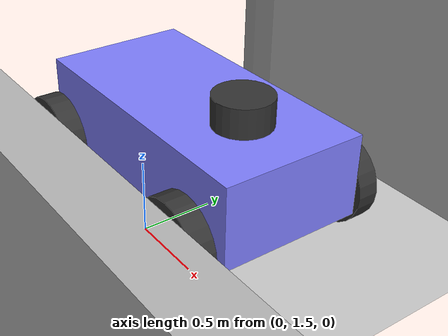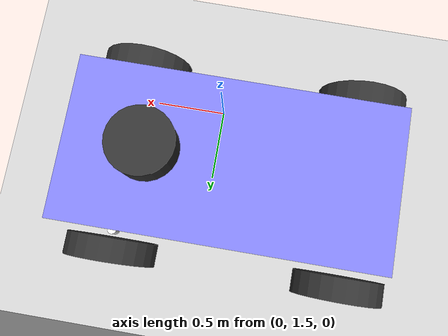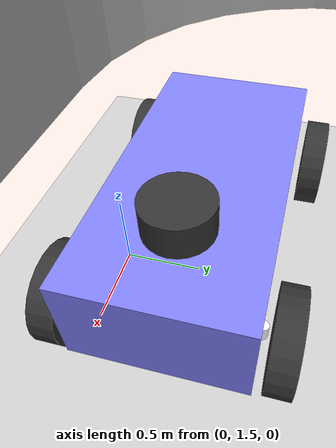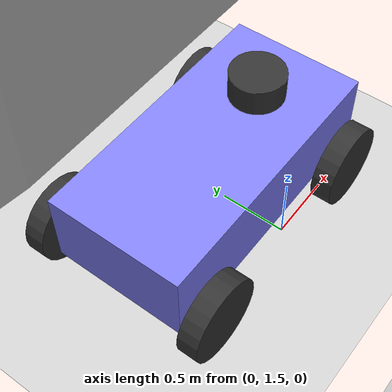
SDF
<?xml version="1.0"?>
<sdf version="1.6">
  <world name="race">

    <physics name="1ms" type="ignored">
      <max_step_size>0.001</max_step_size>
      <real_time_factor>1.0</real_time_factor>
    </physics>
    <plugin
      filename="ignition-gazebo-physics-system"
      name="ignition::gazebo::systems::Physics">
    </plugin>
    <plugin
      filename="ignition-gazebo-user-commands-system"
      name="ignition::gazebo::systems::UserCommands">
    </plugin>
    <plugin
      filename="ignition-gazebo-scene-broadcaster-system"
      name="ignition::gazebo::systems::SceneBroadcaster">
    </plugin>
    <plugin
      filename="ignition-gazebo-sensors-system"
      name="ignition::gazebo::systems::Sensors">
      <render_engine>ogre2</render_engine>
    </plugin>
    <plugin
      filename="ignition-gazebo-contact-system"
      name="ignition::gazebo::systems::Contact">
    </plugin>

    <light type="directional" name="sun">
      <cast_shadows>true</cast_shadows>
      <pose>0 0 10 0 0 0</pose>
      <diffuse>1 1 1 1</diffuse>
      <specular>0.5 0.5 0.5 1</specular>
      <attenuation>
        <range>1000</range>
        <constant>0.9</constant>
        <linear>0.01</linear>
        <quadratic>0.001</quadratic>
      </attenuation>
      <direction>-0.5 0.1 -0.9</direction>
    </light>

    <model name="ground_plane">
      <static>true</static>
      <link name="link">
        <collision name="collision">
          <geometry>
            <plane>
              <normal>0 0 1</normal>
              <size>100 100</size>
            </plane>
          </geometry>
          <surface>
            <friction>
              <ode>
                <mu>50</mu>
              </ode>
            </friction>
          </surface>
        </collision>
        <visual name="visual">
          <geometry>
            <plane>
              <normal>0 0 1</normal>
              <size>100 100</size>
            </plane>
          </geometry>
          <material>
            <ambient>0.8 0.8 0.8 1</ambient>
            <diffuse>0.8 0.8 0.8 1</diffuse>
            <specular>0.8 0.8 0.8 1</specular>
          </material>
        </visual>
      </link>
    </model>

    <model name="road">
      <static>true</static>
      <pose>-5 0 0 0 -0 0</pose>
      <link name="link">
        <visual name="visual">
          <geometry>
            <mesh>
              <scale>100 100 100</scale>
              <uri>model://road.STL</uri>
            </mesh>
            <material>
              <ambient>1.0 1.0 1.0 1</ambient>
              <diffuse>1.0 1.0 1.0 1</diffuse>
              <specular>1.0 1.0 1.0 1</specular>
            </material>
          </geometry>
        </visual>
        <collision name="collision">
          <geometry>
            <mesh>
              <scale>100 100 100</scale>
              <uri>model://road.STL</uri>
            </mesh>
          </geometry>
        </collision>
        <sensor name="sensor_contact" type="contact">
          <contact>
            <collision>collision</collision>
          </contact>
        </sensor>
      </link>
    </model>

    <model name="vehicle">
      <pose>0 2 0.325 0 -0 0</pose>

      <frame name="lidar_frame" attached_to="chassis">
        <pose>0.5 0 0.284363 0 0 0</pose>
      </frame>

      <link name="chassis">
        <pose>-0.151427 -0 0.175 0 -0 0</pose>
        <inertial>
          <mass>1.14395</mass>
          <inertia>
            <ixx>0.126164</ixx>
            <ixy>0</ixy>
            <ixz>0</ixz>
            <iyy>0.416519</iyy>
            <iyz>0</iyz>
            <izz>0.481014</izz>
          </inertia>
        </inertial>
        <visual name="visual">
          <geometry>
            <box>
              <size>2.01142 1 0.568726</size>
            </box>
          </geometry>
          <material>
            <ambient>0.5 0.5 1.0 1</ambient>
            <diffuse>0.5 0.5 1.0 1</diffuse>
            <specular>0.0 0.0 1.0 1</specular>
          </material>
        </visual>
        <collision name="collision">
          <geometry>
            <box>
              <size>2.01142 1 0.568726</size>
            </box>
          </geometry>
        </collision>
      </link>

      <link name="lidar">
        <pose relative_to="lidar_frame">0 0 0.1 0 0 0</pose>
        <inertial>
          <mass>0.5</mass>
          <inertia>
            <ixx>0.006667</ixx>
            <ixy>0</ixy>
            <ixz>0</ixz>
            <iyy>0.006667</iyy>
            <iyz>0</iyz>
            <izz>0.01</izz>
          </inertia>
        </inertial>
        <visual name="visual">
          <geometry>
            <cylinder>
              <length>0.2</length>
              <radius>0.2</radius>
            </cylinder>
          </geometry>
          <material>
            <ambient>0.2 0.2 0.2 1</ambient>
            <diffuse>0.2 0.2 0.2 1</diffuse>
            <specular>0.2 0.2 0.2 1</specular>
          </material>
        </visual>
        <collision name="collision">
          <geometry>
            <cylinder>
              <radius>0.1</radius>
              <length>0.1</length>
            </cylinder>
          </geometry>
        </collision>
        <sensor name="gpu_lidar" type="gpu_lidar">
          <pose relative_to="lidar_frame">0 0 0.1 0 0 0</pose>
          <topic>/vehicle/lidar</topic>
          <update_rate>10</update_rate>
          <ray>
            <scan>
              <horizontal>
                <samples>360</samples>
                <resolution>1</resolution>
                <min_angle>-3.141593</min_angle>
                <max_angle>3.141593</max_angle>
              </horizontal>
              <vertical>
                <samples>1</samples>
                <resolution>0.01</resolution>
                <min_angle>0</min_angle>
                <max_angle>0</max_angle>
              </vertical>
            </scan>
            <range>
              <min>0.5</min>
              <max>10.0</max>
              <resolution>0.01</resolution>
            </range>
          </ray>
          <always_on>1</always_on>
          <visualize>true</visualize>
        </sensor>
      </link>

      <link name="front_left_wheel">
        <pose>0.554283 0.625029 -0.025 -1.5707 0 0</pose>
        <inertial>
          <mass>2</mass>
          <inertia>
            <ixx>0.145833</ixx>
            <ixy>0</ixy>
            <ixz>0</ixz>
            <iyy>0.145833</iyy>
            <iyz>0</iyz>
            <izz>0.125</izz>
          </inertia>
        </inertial>
        <visual name="visual">
          <geometry>
            <cylinder>
              <length>0.15</length>
              <radius>0.3</radius>
            </cylinder>
          </geometry>
          <material>
            <ambient>0.2 0.2 0.2 1</ambient>
            <diffuse>0.2 0.2 0.2 1</diffuse>
            <specular>0.2 0.2 0.2 1</specular>
          </material>
        </visual>
        <collision name="collision">
          <geometry>
            <cylinder>
              <length>0.15</length>
              <radius>0.3</radius>
            </cylinder>
          </geometry>
          <surface>
            <friction>
              <ode>
                <mu>0.5</mu>
                <mu2>1.0</mu2>
                <fdir1>0 0 1</fdir1>
              </ode>
            </friction>
          </surface>
        </collision>
      </link>

      <link name="rear_left_wheel">
        <pose>-0.957138 0.625029 -0.025 -1.5707 0 0</pose>
        <inertial>
          <mass>2</mass>
          <inertia>
            <ixx>0.145833</ixx>
            <ixy>0</ixy>
            <ixz>0</ixz>
            <iyy>0.145833</iyy>
            <iyz>0</iyz>
            <izz>0.125</izz>
          </inertia>
        </inertial>
        <visual name="visual">
          <geometry>
            <cylinder>
              <length>0.15</length>
              <radius>0.3</radius>
            </cylinder>
          </geometry>
          <material>
            <ambient>0.2 0.2 0.2 1</ambient>
            <diffuse>0.2 0.2 0.2 1</diffuse>
            <specular>0.2 0.2 0.2 1</specular>
          </material>
        </visual>
        <collision name="collision">
          <geometry>
            <cylinder>
              <length>0.15</length>
              <radius>0.3</radius>
            </cylinder>
          </geometry>
          <surface>
            <friction>
              <ode>
                <mu>0.5</mu>
                <mu2>1.0</mu2>
                <fdir1>0 0 1</fdir1>
              </ode>
            </friction>
          </surface>
        </collision>
      </link>

      <link name="front_right_wheel">
        <pose>0.554282 -0.625029 -0.025 -1.5707 0 0</pose>
        <inertial>
          <mass>2</mass>
          <inertia>
            <ixx>0.145833</ixx>
            <ixy>0</ixy>
            <ixz>0</ixz>
            <iyy>0.145833</iyy>
            <iyz>0</iyz>
            <izz>0.125</izz>
          </inertia>
        </inertial>
        <visual name="visual">
          <geometry>
            <cylinder>
              <length>0.15</length>
              <radius>0.3</radius>
            </cylinder>
          </geometry>
          <material>
            <ambient>0.2 0.2 0.2 1</ambient>
            <diffuse>0.2 0.2 0.2 1</diffuse>
            <specular>0.2 0.2 0.2 1</specular>
          </material>
        </visual>
        <collision name="collision">
          <geometry>
            <cylinder>
              <length>0.15</length>
              <radius>0.3</radius>
            </cylinder>
          </geometry>
          <surface>
            <friction>
              <ode>
                <mu>0.5</mu>
                <mu2>1.0</mu2>
                <fdir1>0 0 1</fdir1>
              </ode>
            </friction>
          </surface>
        </collision>
      </link>

      <link name="rear_right_wheel">
        <pose>-0.957138 -0.625029 -0.025 -1.5707 0 0</pose>
        <inertial>
          <mass>2</mass>
          <inertia>
            <ixx>0.145833</ixx>
            <ixy>0</ixy>
            <ixz>0</ixz>
            <iyy>0.145833</iyy>
            <iyz>0</iyz>
            <izz>0.125</izz>
          </inertia>
        </inertial>
        <visual name="visual">
          <geometry>
            <cylinder>
              <length>0.15</length>
              <radius>0.3</radius>
            </cylinder>
          </geometry>
          <material>
            <ambient>0.2 0.2 0.2 1</ambient>
            <diffuse>0.2 0.2 0.2 1</diffuse>
            <specular>0.2 0.2 0.2 1</specular>
          </material>
        </visual>
        <collision name="collision">
          <geometry>
            <cylinder>
              <length>0.15</length>
              <radius>0.3</radius>
            </cylinder>
          </geometry>
          <surface>
            <friction>
              <ode>
                <mu>0.5</mu>
                <mu2>1.0</mu2>
                <fdir1>0 0 1</fdir1>
              </ode>
            </friction>
          </surface>
        </collision>
      </link>

      <link name="front_left_wheel_steering_link">
        <pose>0.554283 0.5 0.02 0 0 0</pose>
        <inertial>
          <mass>0.5</mass>
          <inertia>
            <ixx>0.0153</ixx>
            <iyy>0.025</iyy>
            <izz>0.0153</izz>
          </inertia>
        </inertial>
        <visual name="steering_link_visual">
          <pose>0 0 0 0 0 0</pose>
          <geometry>
            <cylinder>
              <length>0.1</length>
              <radius>0.03</radius>
            </cylinder>
          </geometry>
          <material>
            <ambient>1 1 1</ambient>
            <diffuse>1 1 1</diffuse>
          </material>
        </visual>
      </link>

      <link name="front_right_wheel_steering_link">
        <pose>0.554283 -0.5 0.02 0 0 0</pose>
        <inertial>
          <mass>0.5</mass>
          <inertia>
            <ixx>0.0153</ixx>
            <iyy>0.025</iyy>
            <izz>0.0153</izz>
          </inertia>
        </inertial>
        <visual name="steering_link_visual">
          <pose>0 0 0 0 0 0</pose>
          <geometry>
            <cylinder>
              <length>0.1</length>
              <radius>0.03</radius>
            </cylinder>
          </geometry>
          <material>
            <ambient>1 1 1</ambient>
            <diffuse>1 1 1</diffuse>
          </material>
        </visual>
      </link>

      <joint name="front_left_wheel_steering_joint" type="revolute">
        <child>front_left_wheel_steering_link</child>
        <parent>chassis</parent>
        <axis>
          <xyz>0 0 1</xyz>
          <limit>
            <lower>-0.6</lower>
            <upper>+0.6</upper>
            <velocity>1.0</velocity>
            <effort>25</effort>
          </limit>
          <use_parent_model_frame>1</use_parent_model_frame>
        </axis>
      </joint>

      <joint name="front_right_wheel_steering_joint" type="revolute">
        <parent>chassis</parent>
        <child>front_right_wheel_steering_link</child>
        <axis>
          <xyz>0 0 1</xyz>
          <limit>
            <lower>-0.6</lower>
            <upper>+0.6</upper>
            <velocity>1.0</velocity>
            <effort>25</effort>
          </limit>
        </axis>
      </joint>

      <joint name="front_left_wheel_joint" type="revolute">
        <parent>front_left_wheel_steering_link</parent>
        <child>front_left_wheel</child>
        <axis>
          <xyz>0 0 1</xyz>
          <limit>
            <lower>-1.79769e+308</lower>
            <upper>1.79769e+308</upper>
          </limit>
        </axis>
      </joint>

      <joint name="front_right_wheel_joint" type="revolute">
        <parent>front_right_wheel_steering_link</parent>
        <child>front_right_wheel</child>
        <axis>
          <xyz>0 0 1</xyz>
          <limit>
            <lower>-1.79769e+308</lower>
            <upper>1.79769e+308</upper>
          </limit>
        </axis>
      </joint>

      <joint name="rear_left_wheel_joint" type="revolute">
        <parent>chassis</parent>
        <child>rear_left_wheel</child>
        <axis>
          <xyz>0 0 1</xyz>
          <limit>
            <lower>-1.79769e+308</lower>
            <upper>1.79769e+308</upper>
          </limit>
        </axis>
      </joint>

      <joint name="rear_right_wheel_joint" type="revolute">
        <parent>chassis</parent>
        <child>rear_right_wheel</child>
        <axis>
          <xyz>0 0 1</xyz>
          <limit>
            <lower>-1.79769e+308</lower>
            <upper>1.79769e+308</upper>
          </limit>
        </axis>
      </joint>

      <joint name="lidar_joint" type="fixed">
        <parent>chassis</parent>
        <child>lidar</child>
      </joint>

      <plugin
        filename="ignition-gazebo-ackermann-steering-system"
        name="ignition::gazebo::systems::AckermannSteering">
        <left_joint>front_left_wheel_joint</left_joint>
        <left_joint>rear_left_wheel_joint</left_joint>
        <right_joint>front_right_wheel_joint</right_joint>
        <right_joint>rear_right_wheel_joint</right_joint>
        <left_steering_joint>front_left_wheel_steering_joint</left_steering_joint>
        <right_steering_joint>front_right_wheel_steering_joint</right_steering_joint>
        <kingpin_width>1.0</kingpin_width>
        <steering_limit>0.5</steering_limit>
        <wheel_base>1.0</wheel_base>
        <wheel_separation>1.25</wheel_separation>
        <wheel_radius>0.3</wheel_radius>
        <min_velocity>-2</min_velocity>
        <max_velocity>2</max_velocity>
        <min_acceleration>-3</min_acceleration>
        <max_acceleration>3</max_acceleration>
        <topic>/vehicle/cmd_vel</topic>
        <odom_topic>/vehicle/odometry</odom_topic>
        <tf_topic>/vehicle/tf</tf_topic>
      </plugin>

    </model>

  </world>
</sdf>
